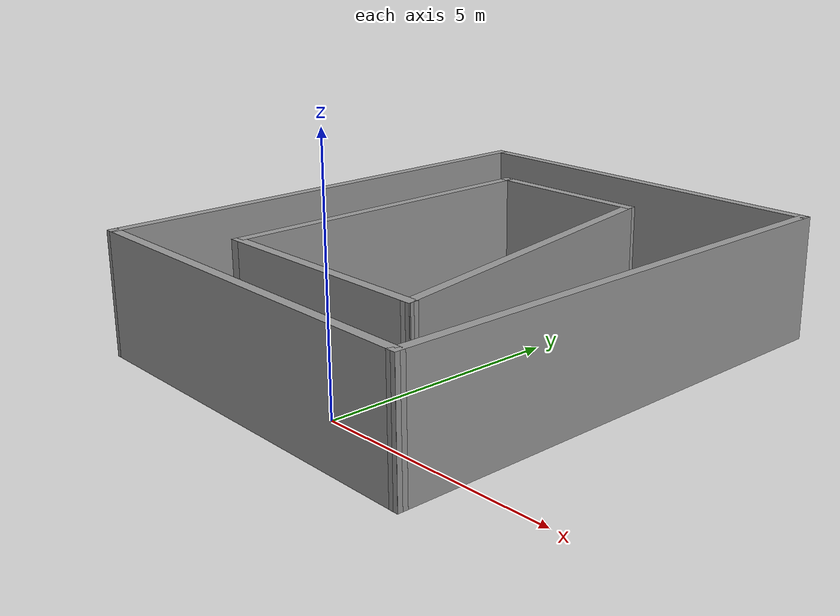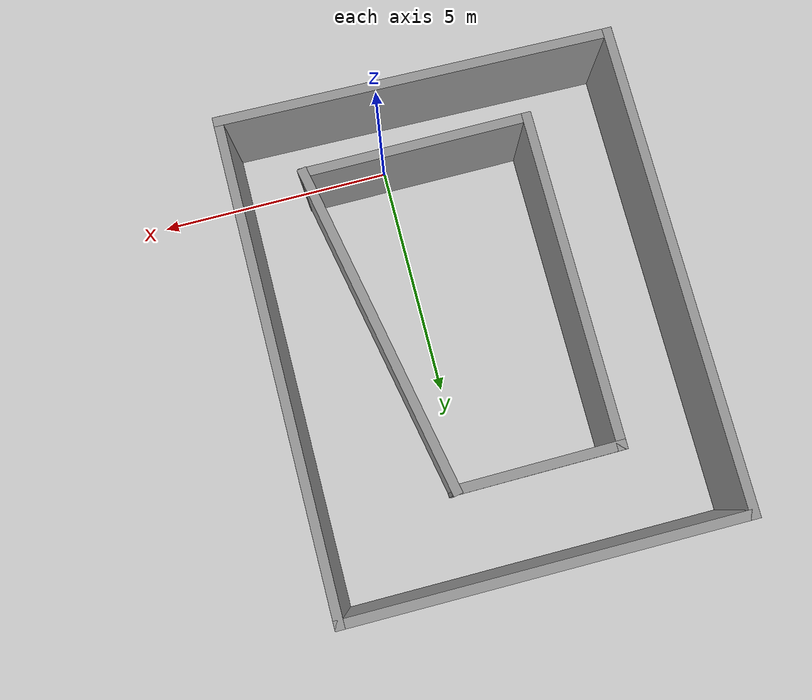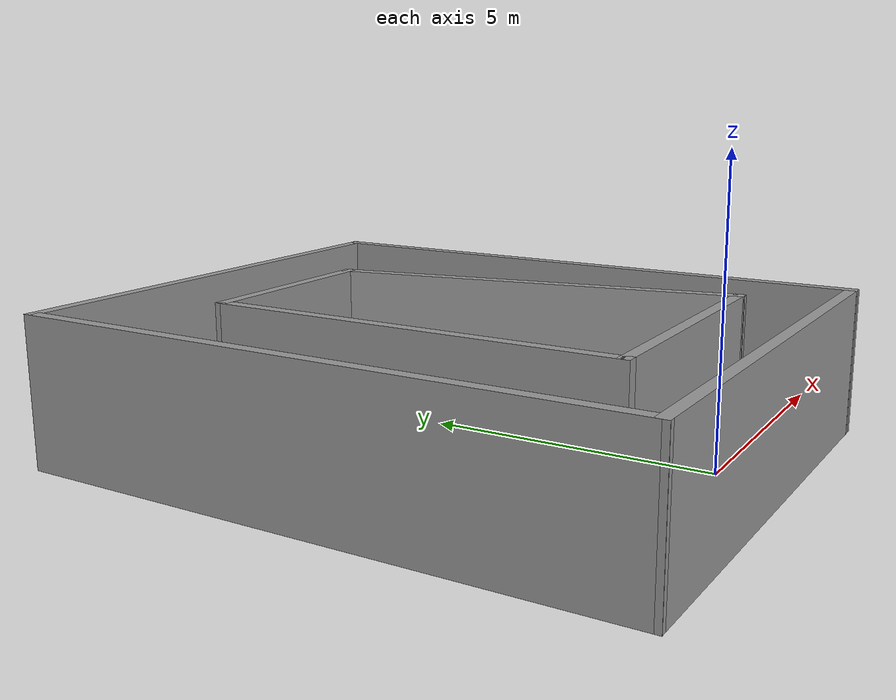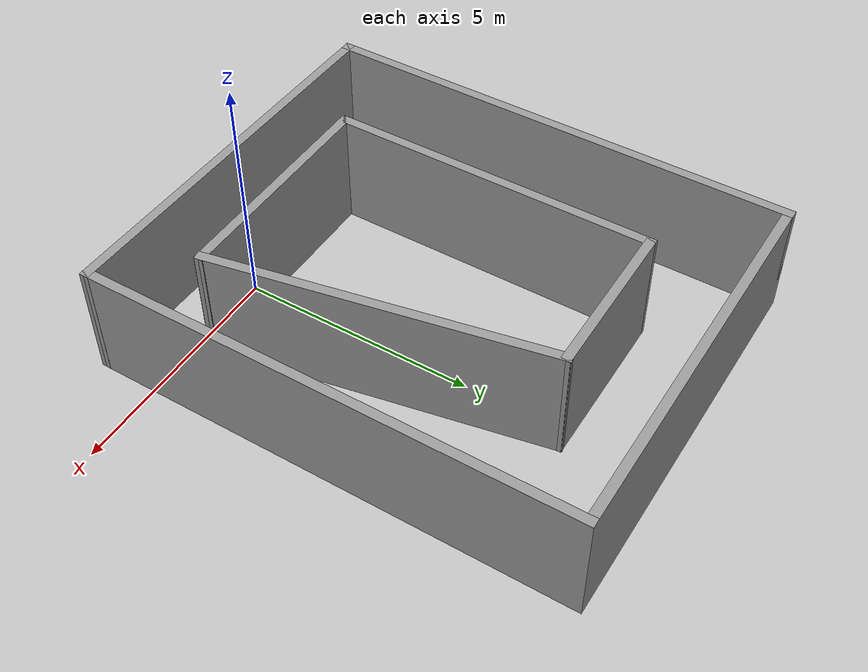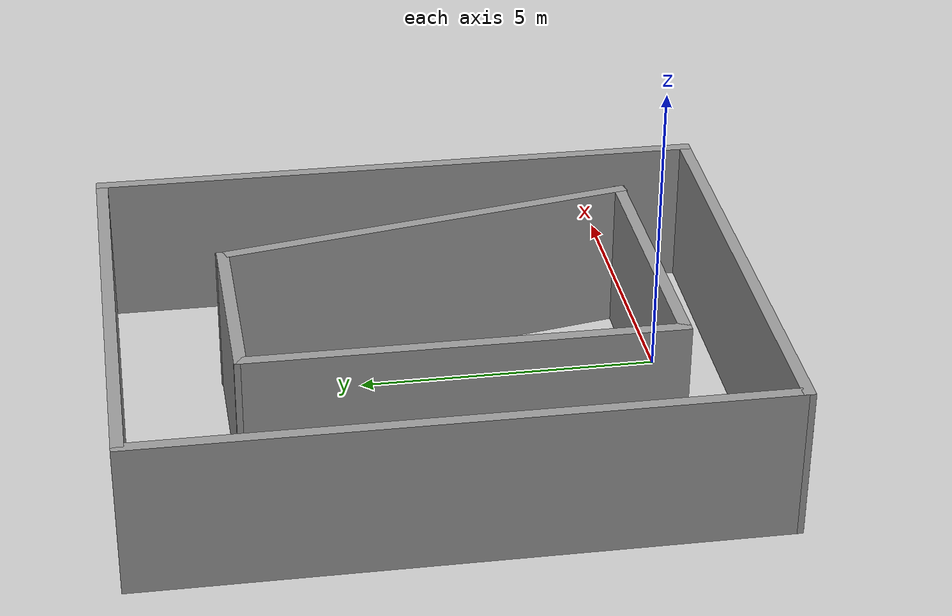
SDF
<?xml version='1.0'?>
<sdf version='1.4'>
  <model name='coridor'>
    <link name='Wall_0'>
      <collision name='Wall_0_Collision'>
        <geometry>
          <box>
            <size>10.3081 0.2 2.5</size>
          </box>
        </geometry>
        <pose>0 0 1.25 0 -0 0</pose>
      </collision>
      <visual name='Wall_0_Visual'>
        <pose>0 0 1.25 0 -0 0</pose>
        <geometry>
          <box>
            <size>10.3081 0.2 2.5</size>
          </box>
        </geometry>
        <material>
          <script>
            <uri>file://media/materials/scripts/gazebo.material</uri>
            <name>Gazebo/Grey</name>
          </script>
        </material>
      </visual>
      <velocity_decay>
        <linear>0</linear>
        <angular>0</angular>
      </velocity_decay>
      <pose>-5.09 4.01406 0 0 -0 1.5708</pose>
    </link>
    <link name='Wall_1'>
      <collision name='Wall_1_Collision'>
        <geometry>
          <box>
            <size>8.40598 0.2 2.5</size>
          </box>
        </geometry>
        <pose>0 0 1.25 0 -0 0</pose>
      </collision>
      <visual name='Wall_1_Visual'>
        <pose>0 0 1.25 0 -0 0</pose>
        <geometry>
          <box>
            <size>8.40598 0.2 2.5</size>
          </box>
        </geometry>
        <material>
          <script>
            <uri>file://media/materials/scripts/gazebo.material</uri>
            <name>Gazebo/Grey</name>
          </script>
        </material>
      </visual>
      <velocity_decay>
        <linear>0</linear>
        <angular>0</angular>
      </velocity_decay>
      <pose>-0.987008 9.06811 0 0 -0 0</pose>
    </link>
    <link name='Wall_2'>
      <collision name='Wall_2_Collision'>
        <geometry>
          <box>
            <size>10.4556 0.2 2.5</size>
          </box>
        </geometry>
        <pose>0 0 1.25 0 -0 0</pose>
      </collision>
      <visual name='Wall_2_Visual'>
        <pose>0 0 1.25 0 -0 0</pose>
        <geometry>
          <box>
            <size>10.4556 0.2 2.5</size>
          </box>
        </geometry>
        <material>
          <script>
            <uri>file://media/materials/scripts/gazebo.material</uri>
            <name>Gazebo/Grey</name>
          </script>
        </material>
      </visual>
      <velocity_decay>
        <linear>0</linear>
        <angular>0</angular>
      </velocity_decay>
      <pose>3.11598 3.94029 0 0 0 -1.5708</pose>
    </link>
    <link name='Wall_3'>
      <collision name='Wall_3_Collision'>
        <geometry>
          <box>
            <size>8.40731 0.2 2.5</size>
          </box>
        </geometry>
        <pose>0 0 1.25 0 -0 0</pose>
      </collision>
      <visual name='Wall_3_Visual'>
        <pose>0 0 1.25 0 -0 0</pose>
        <geometry>
          <box>
            <size>8.40731 0.2 2.5</size>
          </box>
        </geometry>
        <material>
          <script>
            <uri>file://media/materials/scripts/gazebo.material</uri>
            <name>Gazebo/Grey</name>
          </script>
        </material>
      </visual>
      <velocity_decay>
        <linear>0</linear>
        <angular>0</angular>
      </velocity_decay>
      <pose>-0.987008 -1.11377 0 0 -0 3.12362</pose>
    </link>
    <link name='Wall_5'>
      <collision name='Wall_5_Collision'>
        <geometry>
          <box>
            <size>7.06285 0.2 2.5</size>
          </box>
        </geometry>
        <pose>0 0 1.25 0 -0 0</pose>
      </collision>
      <visual name='Wall_5_Visual'>
        <pose>0 0 1.25 0 -0 0</pose>
        <geometry>
          <box>
            <size>7.06285 0.2 2.5</size>
          </box>
        </geometry>
        <material>
          <script>
            <uri>file://media/materials/scripts/gazebo.material</uri>
            <name>Gazebo/Grey</name>
          </script>
        </material>
      </visual>
      <velocity_decay>
        <linear>0</linear>
        <angular>0</angular>
      </velocity_decay>
      <pose>-2.99443 3.7335 0 0 0 -1.5708</pose>
    </link>
    <link name='Wall_6'>
      <collision name='Wall_6_Collision'>
        <geometry>
          <box>
            <size>4.88164 0.2 2.5</size>
          </box>
        </geometry>
        <pose>0 0 1.25 0 -0 0</pose>
      </collision>
      <visual name='Wall_6_Visual'>
        <pose>0 0 1.25 0 -0 0</pose>
        <geometry>
          <box>
            <size>4.88164 0.2 2.5</size>
          </box>
        </geometry>
        <material>
          <script>
            <uri>file://media/materials/scripts/gazebo.material</uri>
            <name>Gazebo/Grey</name>
          </script>
        </material>
      </visual>
      <velocity_decay>
        <linear>0</linear>
        <angular>0</angular>
      </velocity_decay>
      <pose>-0.65361 0.302078 0 0 -0 0</pose>
    </link>
    <link name='Wall_7'>
      <collision name='Wall_7_Collision'>
        <geometry>
          <box>
            <size>7.22175 0.2 2.5</size>
          </box>
        </geometry>
        <pose>0 0 1.25 0 -0 0</pose>
      </collision>
      <visual name='Wall_7_Visual'>
        <pose>0 0 1.25 0 -0 0</pose>
        <geometry>
          <box>
            <size>7.22175 0.2 2.5</size>
          </box>
        </geometry>
        <material>
          <script>
            <uri>file://media/materials/scripts/gazebo.material</uri>
            <name>Gazebo/Grey</name>
          </script>
        </material>
      </visual>
      <velocity_decay>
        <linear>0</linear>
        <angular>0</angular>
      </velocity_decay>
      <pose>1.0089 3.7468 0 0 -0 1.76522</pose>
    </link>
    <link name='Wall_8'>
      <collision name='Wall_8_Collision'>
        <geometry>
          <box>
            <size>3.52513 0.2 2.5</size>
          </box>
        </geometry>
        <pose>0 0 1.25 0 -0 0</pose>
      </collision>
      <visual name='Wall_8_Visual'>
        <pose>0 0 1.25 0 -0 0</pose>
        <geometry>
          <box>
            <size>3.52513 0.2 2.5</size>
          </box>
        </geometry>
        <material>
          <script>
            <uri>file://media/materials/scripts/gazebo.material</uri>
            <name>Gazebo/Grey</name>
          </script>
        </material>
      </visual>
      <velocity_decay>
        <linear>0</linear>
        <angular>0</angular>
      </velocity_decay>
      <pose>-1.33191 7.17823 0 0 0 -3.13359</pose>
    </link>
    <static>1</static>
  </model>
</sdf>
